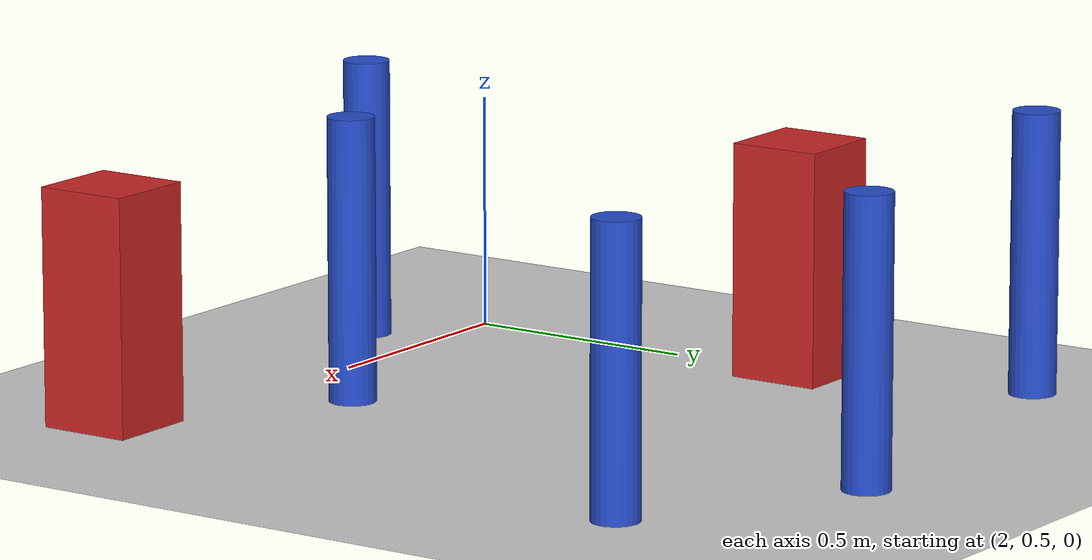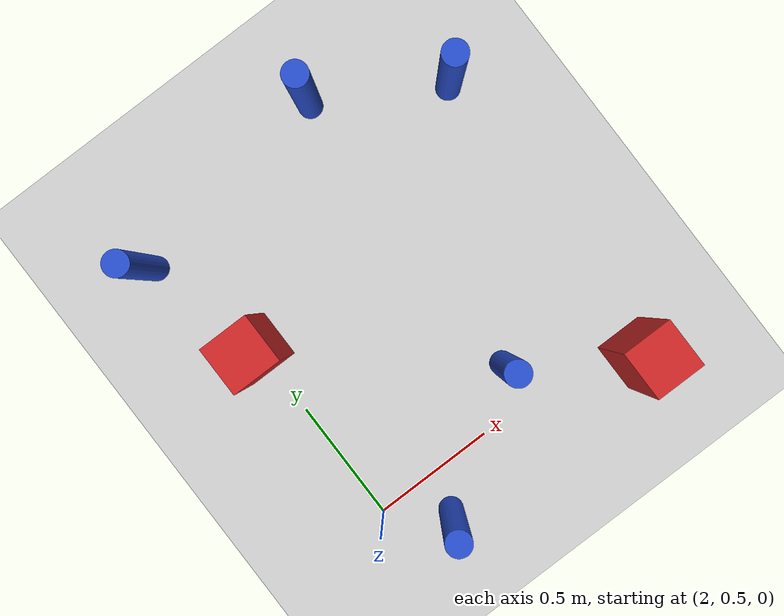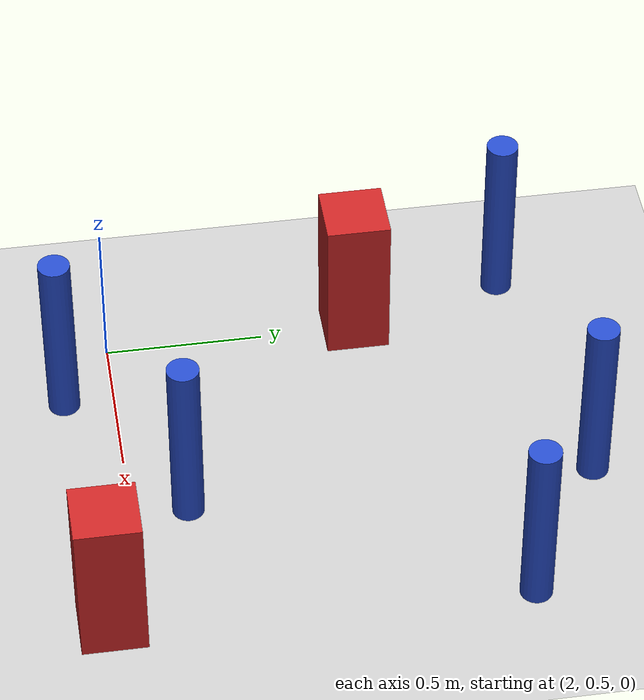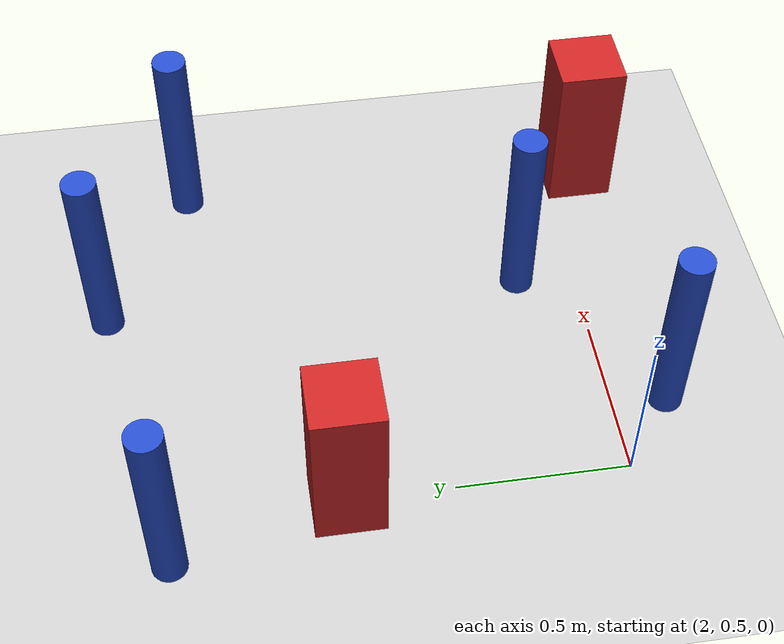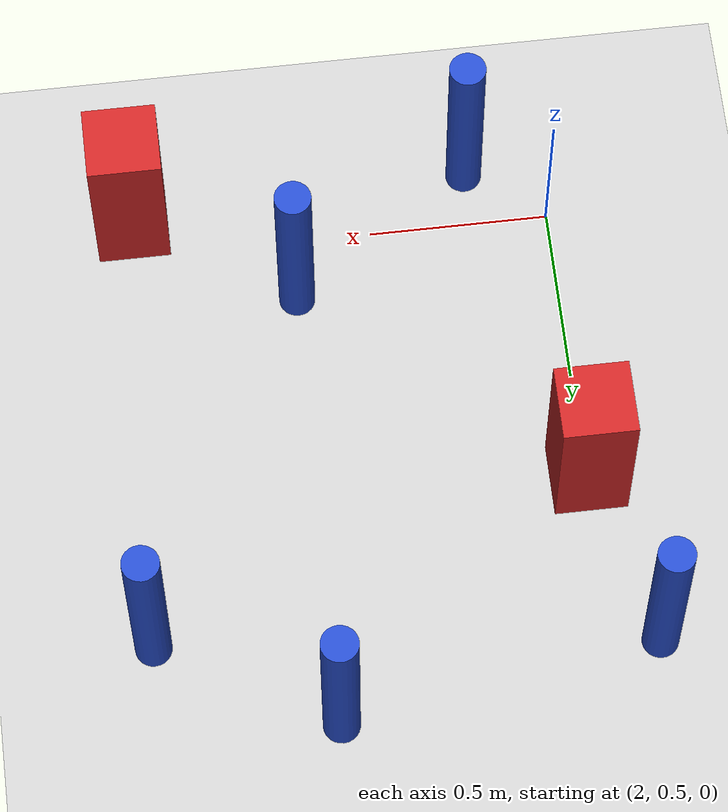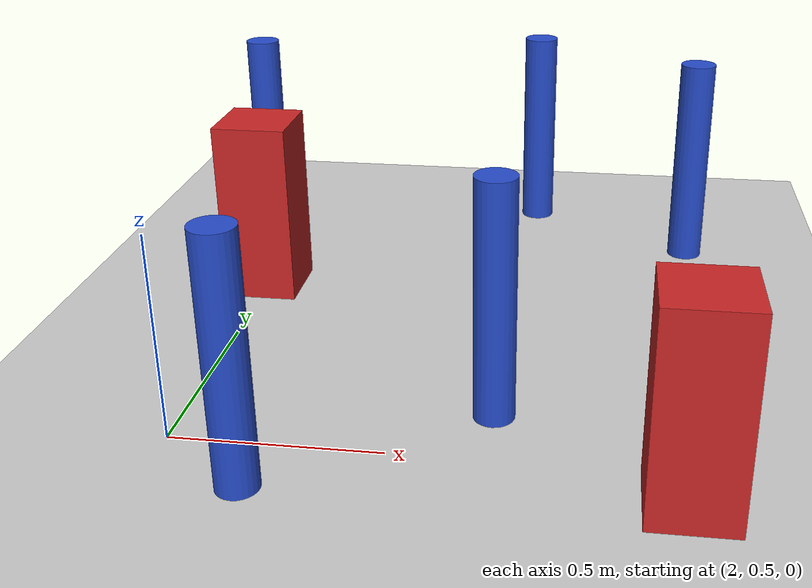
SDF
<sdf version="1.6">
 <world name="default">
  <model name="ground_plane">
   <static>1</static>
   <link name="link">
    <collision name="collision">
     <geometry><plane><normal>0 0 1</normal><size>100 100</size></plane></geometry>
     <surface><friction><ode><mu>100</mu><mu2>50</mu2></ode></friction></surface>
    </collision>
    <visual name="visual">
     <cast_shadows>0</cast_shadows>
     <geometry><plane><normal>0 0 1</normal><size>100 100</size></plane></geometry>
     <material>
      <ambient>1.0 1.0 1.0 1.0</ambient>
      <diffuse>0.8 0.8 0.8 1.0</diffuse>
      <specular>0.01 0.01 0.01 1.000000</specular>
     </material>
    </visual>
   </link>
  </model>
  <model name="pole_obstacle49">
   <static>true</static>
   <pose>3.21323406869 1.67032624601 7.38925637345e-09 -8.471706928e-08 1.24976765152e-08 -1.74513093012e-07</pose>
   <link name="link">
    <pose>0 0 0.3 0 -0 0</pose>
    <inertial>
     <mass>1</mass>
     <inertia><ixx>0.145833</ixx><ixy>0</ixy><ixz>0</ixz><iyy>0.145833</iyy><iyz>0</iyz><izz>0.125</izz></inertia>
    </inertial>
    <collision name="collision">
     <geometry><cylinder><radius>0.05</radius><length>.6</length></cylinder></geometry>
    </collision>
    <visual name="visual">
     <geometry><cylinder><radius>0.05</radius><length>.6</length></cylinder></geometry>
     <material>
      <script><name>Gazebo/Blue</name><uri>file://media/materials/scripts/gazebo.material</uri></script>
     </material>
    </visual>
   </link>
  </model>
  <model name="square_post_obstacle78">
   <static>true</static>
   <pose>3.16194854522 0.397947053 1.91545236811e-07 -7.35059704564e-06 1.12565212e-07 2.39332434364e-05</pose>
   <link name="link">
    <pose>0 0 0.25 0 -0 0</pose>
    <inertial>
     <mass>100</mass>
     <inertia>
      <ixx>0.166667</ixx>
      <ixy>0</ixy>
      <ixz>0</ixz>
      <iyy>0.166667</iyy>
      <iyz>0</iyz>
      <izz>0.166667</izz>
     </inertia>
    </inertial>
    <collision name="collision"><geometry><box><size>.2 .2 .5</size></box></geometry></collision>
    <visual name="visual">
     <geometry><box><size>.2 .2 .5</size></box></geometry>
     <material>
      <script><name>Gazebo/Red</name><uri>file://media/materials/scripts/gazebo.material</uri></script>
     </material>
    </visual>
   </link>
  </model>
  <model name="pole_obstacle93">
   <static>true</static>
   <pose>2.21652439592 0.342865104431 7.38925637345e-09 -8.471706928e-08 1.24976765172e-08 -1.74513093013e-07</pose>
   <link name="link">
    <pose>0 0 0.3 0 -0 0</pose>
    <inertial>
     <mass>1</mass>
     <inertia><ixx>0.145833</ixx><ixy>0</ixy><ixz>0</ixz><iyy>0.145833</iyy><iyz>0</iyz><izz>0.125</izz></inertia>
    </inertial>
    <collision name="collision">
     <geometry><cylinder><radius>0.05</radius><length>.6</length></cylinder></geometry>
    </collision>
    <visual name="visual">
     <geometry><cylinder><radius>0.05</radius><length>.6</length></cylinder></geometry>
     <material>
      <script><name>Gazebo/Blue</name><uri>file://media/materials/scripts/gazebo.material</uri></script>
     </material>
    </visual>
   </link>
  </model>
  <model name="pole_obstacle120">
   <static>true</static>
   <pose>2.72475846898 0.678446760782 7.38925637345e-09 -8.471706928e-08 1.24976765177e-08 -1.74513093012e-07</pose>
   <link name="link">
    <pose>0 0 0.3 0 -0 0</pose>
    <inertial>
     <mass>1</mass>
     <inertia><ixx>0.145833</ixx><ixy>0</ixy><ixz>0</ixz><iyy>0.145833</iyy><iyz>0</iyz><izz>0.125</izz></inertia>
    </inertial>
    <collision name="collision">
     <geometry><cylinder><radius>0.05</radius><length>.6</length></cylinder></geometry>
    </collision>
    <visual name="visual">
     <geometry><cylinder><radius>0.05</radius><length>.6</length></cylinder></geometry>
     <material>
      <script><name>Gazebo/Blue</name><uri>file://media/materials/scripts/gazebo.material</uri></script>
     </material>
    </visual>
   </link>
  </model>
  <model name="pole_obstacle123">
   <static>true</static>
   <pose>2.73888788131 1.94197333173 7.38925637345e-09 -8.471706928e-08 1.24976765152e-08 -1.74513093012e-07</pose>
   <link name="link">
    <pose>0 0 0.3 0 -0 0</pose>
    <inertial>
     <mass>1</mass>
     <inertia><ixx>0.145833</ixx><ixy>0</ixy><ixz>0</ixz><iyy>0.145833</iyy><iyz>0</iyz><izz>0.125</izz></inertia>
    </inertial>
    <collision name="collision">
     <geometry><cylinder><radius>0.05</radius><length>.6</length></cylinder></geometry>
    </collision>
    <visual name="visual">
     <geometry><cylinder><radius>0.05</radius><length>.6</length></cylinder></geometry>
     <material>
      <script><name>Gazebo/Blue</name><uri>file://media/materials/scripts/gazebo.material</uri></script>
     </material>
    </visual>
   </link>
  </model>
  <model name="square_post_obstacle163">
   <static>true</static>
   <pose>1.99813202088 1.30529235253 1.91545236811e-07 -7.35059704564e-06 1.12565212e-07 2.39332434364e-05</pose>
   <link name="link">
    <pose>0 0 0.25 0 -0 0</pose>
    <inertial>
     <mass>100</mass>
     <inertia>
      <ixx>0.166667</ixx>
      <ixy>0</ixy>
      <ixz>0</ixz>
      <iyy>0.166667</iyy>
      <iyz>0</iyz>
      <izz>0.166667</izz>
     </inertia>
    </inertial>
    <collision name="collision"><geometry><box><size>.2 .2 .5</size></box></geometry></collision>
    <visual name="visual">
     <geometry><box><size>.2 .2 .5</size></box></geometry>
     <material>
      <script><name>Gazebo/Red</name><uri>file://media/materials/scripts/gazebo.material</uri></script>
     </material>
    </visual>
   </link>
  </model>
  <model name="pole_obstacle180">
   <static>true</static>
   <pose>1.86828720424 1.79997021869 7.38925637345e-09 -8.471706928e-08 1.24976765079e-08 -1.74513093017e-07</pose>
   <link name="link">
    <pose>0 0 0.3 0 -0 0</pose>
    <inertial>
     <mass>1</mass>
     <inertia><ixx>0.145833</ixx><ixy>0</ixy><ixz>0</ixz><iyy>0.145833</iyy><iyz>0</iyz><izz>0.125</izz></inertia>
    </inertial>
    <collision name="collision">
     <geometry><cylinder><radius>0.05</radius><length>.6</length></cylinder></geometry>
    </collision>
    <visual name="visual">
     <geometry><cylinder><radius>0.05</radius><length>.6</length></cylinder></geometry>
     <material>
      <script><name>Gazebo/Blue</name><uri>file://media/materials/scripts/gazebo.material</uri></script>
     </material>
    </visual>
   </link>
  </model>
 </world>
</sdf>
